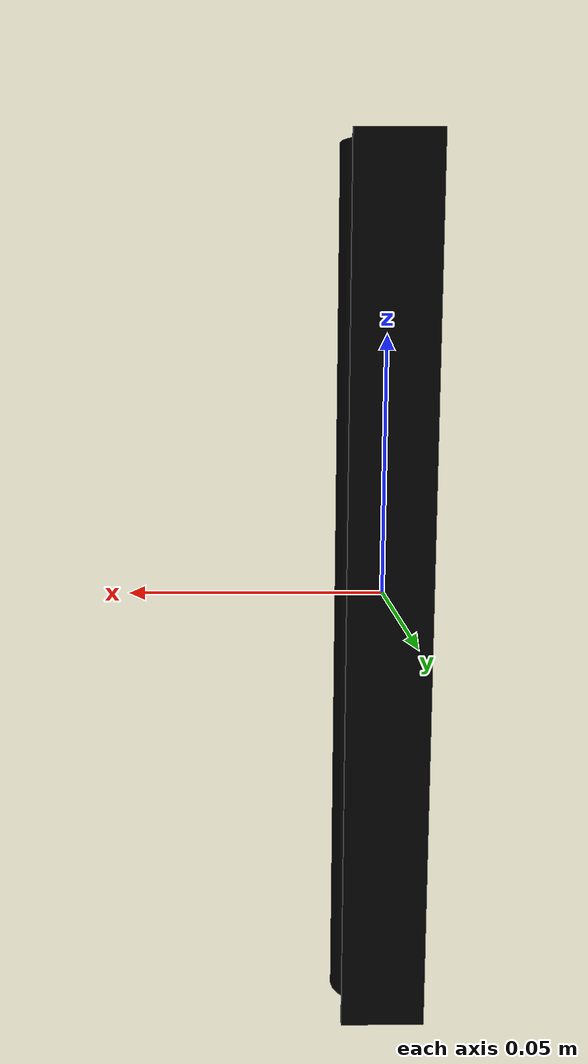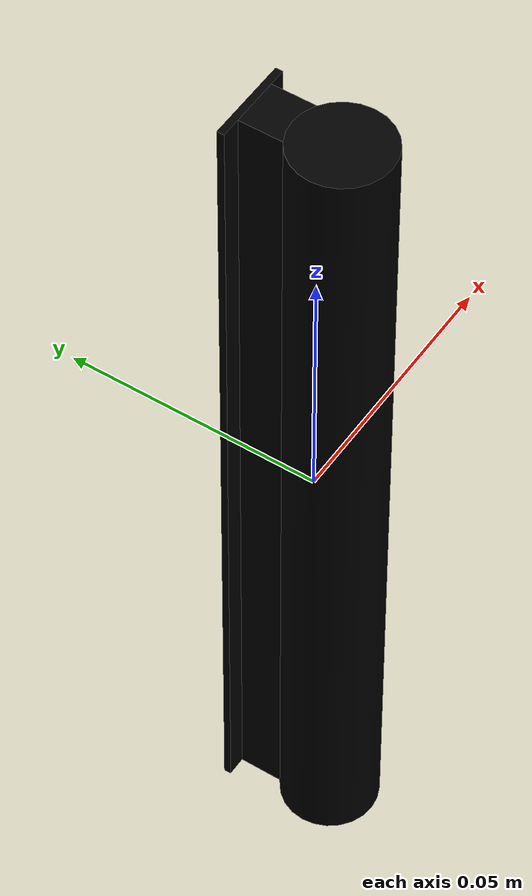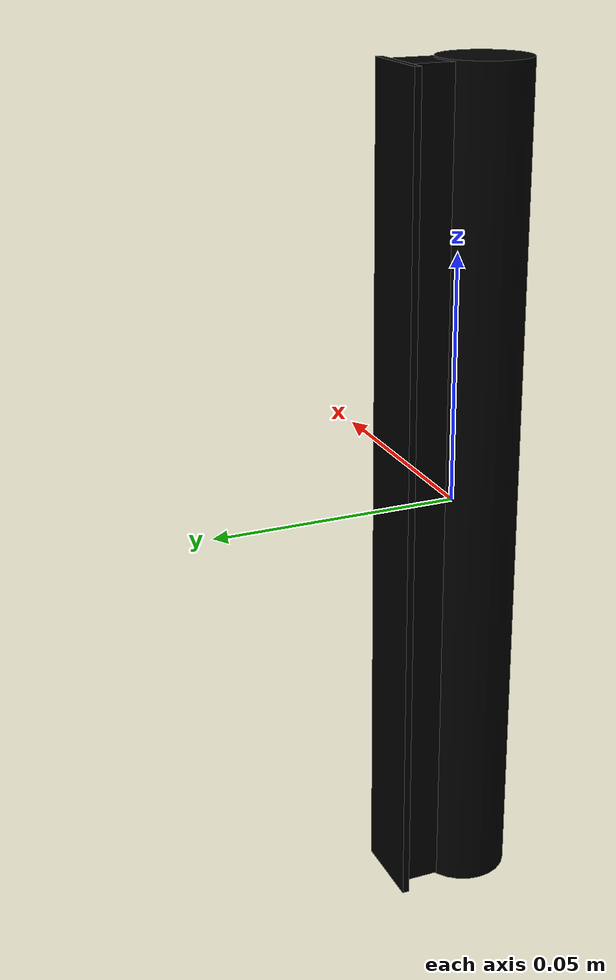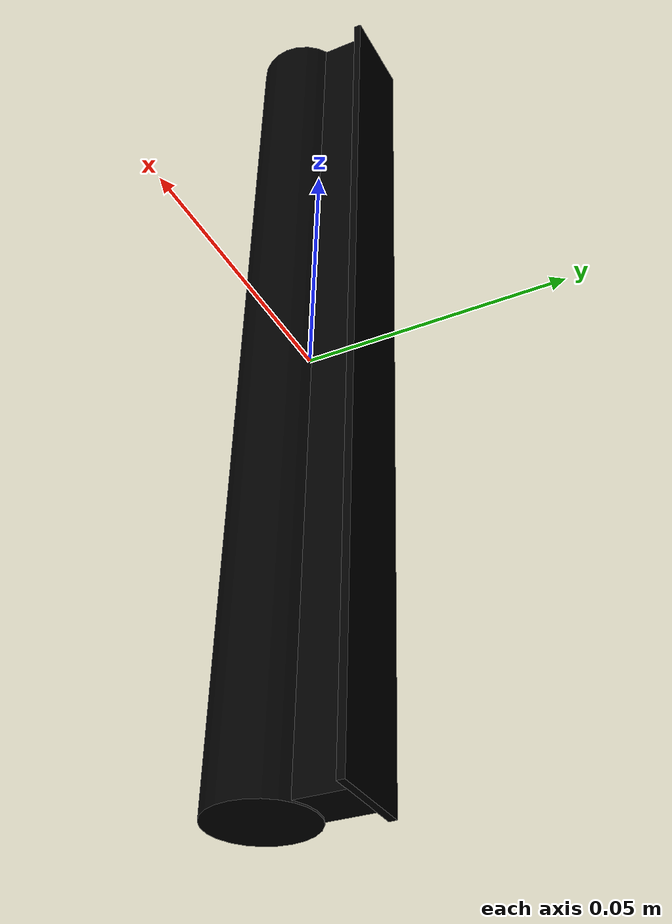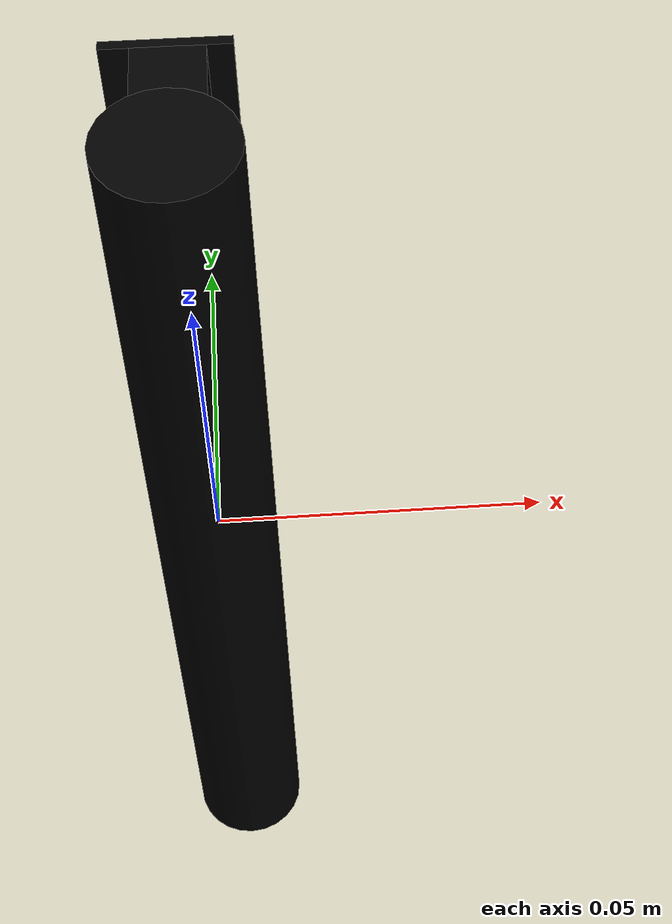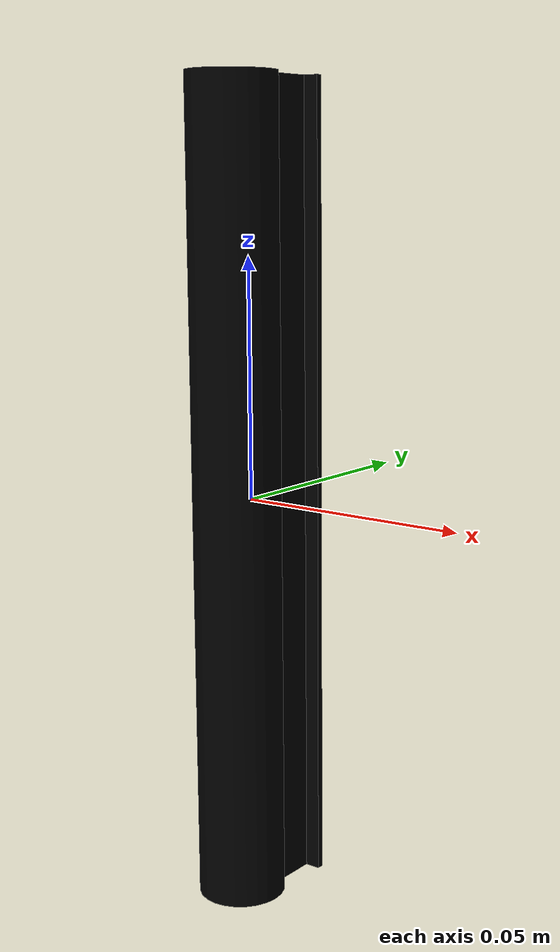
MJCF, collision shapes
<?xml version="1.0" ?>
<mujoco model="model">
    <compiler angle="radian"/>
    <asset>
        <mesh file="visuals/CabinetHandle012.obj" name="mesh"/>
        <texture file="visuals/T_BC001.png" name="tex" type="2d"/>
        <material name="mat" rgba="1 1 1 1.0" texture="tex" shininess="2" specular="0.7"/>
    </asset>
    <default>
        <default class="visual">
            <geom conaffinity="0" contype="0" group="1" type="mesh"/>
        </default>
        <default class="collision">
            <geom group="0" rgba="0 0 0 0"/>
        </default>
        <default class="spawn">
            <geom group="0" rgba="0 0 0 0" contype="0" conaffinity="0"/>
            <site group="0" rgba="0 0 0 0"/>
        </default>
    </default>
    <worldbody>
        <body>
            <body name="object">
                <geom mesh="mesh" type="mesh" solimp="0.998 0.998 0.001" solref="0.001 1" density="100" friction="0.95 0.3 0.1" class="visual" material="mat"/>
                <geom class="collision" type="cylinder" pos="-8.311550482176244e-05 -0.004488236736506224 0.0" size="0.009223190136253834 0.08578011393547058" quat="1.0 0.0 0.0 0.0"/>
                <geom class="collision" type="box" pos="0.0 0.012703396379947662 0.0" size="0.008242110721766949 0.0007012285059317946 0.08550568670034409" quat="1.0 0.0 0.0 0.0" name="handle_connector"/>
                <geom class="collision" type="box" pos="0.00026095507200807333 0.007619604934006929 0.0" size="0.004693926777690649 0.004435770679265261 0.08550568670034409" quat="1.0 0.0 0.0 0.0"/>
            </body>
        </body>
    </worldbody>
    <actuator/>
</mujoco>
